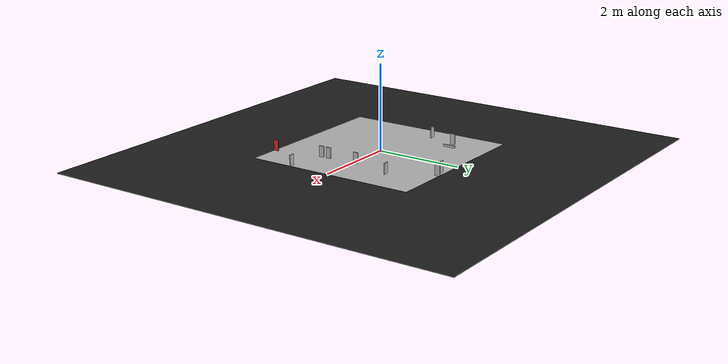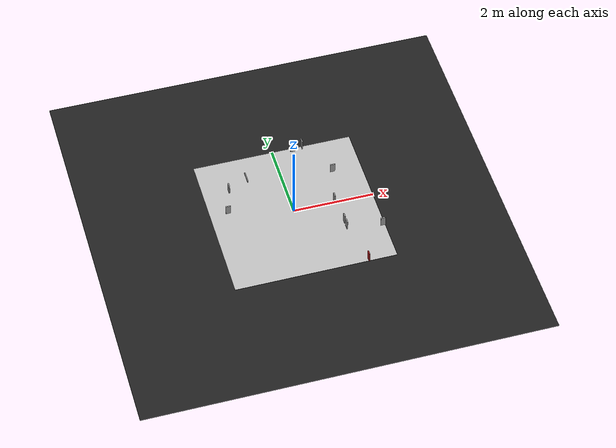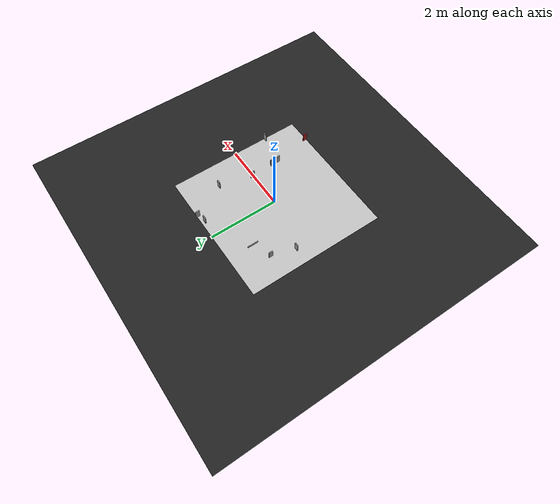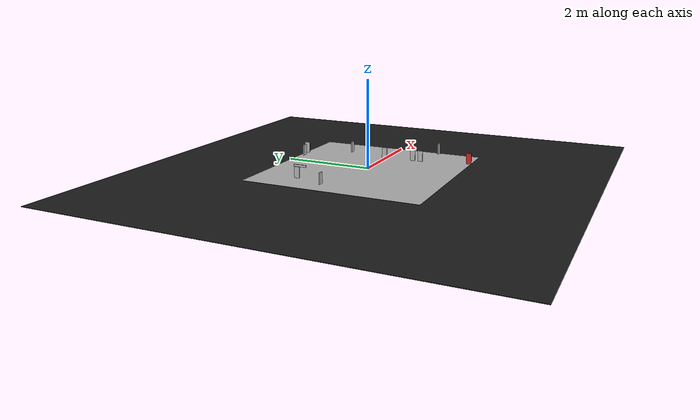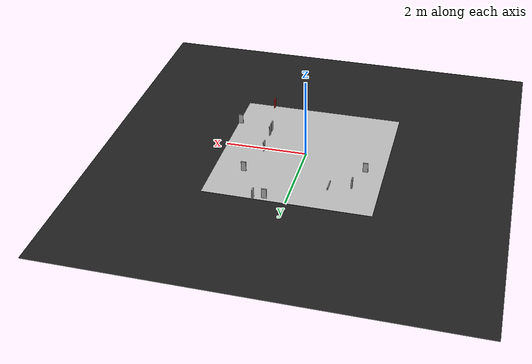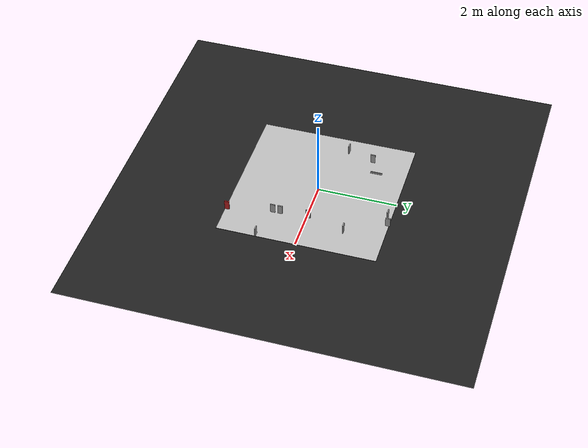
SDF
<sdf version="1.7">
 <world name="default">
  <scene>
   <ambient>0.8 0.8 0.8 1</ambient>
   <shadows>0</shadows>
   <grid>0</grid>
   <background>0.7 0.7 0.7 1</background>
  </scene>
  <model name="course">
   <static>1</static>
   <link name="course_link">
    <collision name="course_collision">
     <geometry><plane><normal>0 0 1</normal><size>4 4</size></plane></geometry>
     <surface><friction><ode><mu>100</mu><mu2>50</mu2></ode></friction></surface>
    </collision>
    <visual name="course_visual">
     <cast_shadows>0</cast_shadows>
     <geometry><plane><normal>0 0 1</normal><size>4 4</size></plane></geometry>
     <material>
      <script>
       <uri>model://turtlebot3_autorace_2020/course/materials/scripts</uri>
       <uri>model://turtlebot3_autorace_2020/course/materials/textures</uri>
       <name>course</name>
      </script>
     </material>
    </visual>
   </link>
   <pose>0 0 0 0 0 -3.14</pose>
  </model>
  <model name="traffic_bar">
   <static>0</static>
   <link name="traffic_bar">
    <collision name="collision"><geometry><box><size>0.3 0.02 0.05</size></box></geometry></collision>
    <visual name="visual">
     <geometry><box><size>0.3 0.02 0.05</size></box></geometry>
     <material>
      <script>
       <uri>model://turtlebot3_autorace_2020/traffic_bar/materials/scripts</uri>
       <uri>model://turtlebot3_autorace_2020/traffic_bar/materials/textures</uri>
       <name>traffic_bar</name>
      </script>
     </material>
    </visual>
    <inertial>
     <inertia><ixx>1</ixx><ixy>0</ixy><ixz>0</ixz><iyy>1</iyy><iyz>0</iyz><izz>1</izz></inertia>
     <mass>1</mass>
    </inertial>
   </link>
   <plugin name="traffic_bar_plugin" filename="libtraffic_bar_plugin.so"/>
   <pose>-0.85 1.26 0.125 0 0 -1.57</pose>
  </model>
  <model name="traffic_light">
   <link name="traffic_light">
    <collision name="collision"><geometry><box><size>0.12 0.025 0.25</size></box></geometry></collision>
    <visual name="visual">
     <geometry><box><size>0.12 0.025 0.25</size></box></geometry>
     <material>
      <script>
       <uri>model://turtlebot3_autorace_2020/traffic_light/materials/scripts</uri>
       <uri>model://turtlebot3_autorace_2020/traffic_light/materials/textures</uri>
       <name>traffic_light_red</name>
      </script>
     </material>
    </visual>
   </link>
   <plugin name="traffic_light_plugin" filename="libtraffic_light_plugin.so"/>
   <static>1</static>
   <pose>1.3 -1.95 0.13 0 0 -1.57</pose>
  </model>
  <model name="traffic_parking">
   <static>1</static>
   <link name="box">
    <collision name="collision"><geometry><box><size>0.12 0.025 0.25</size></box></geometry></collision>
    <visual name="visual">
     <geometry><box><size>0.12 0.025 0.25</size></box></geometry>
     <material>
      <script>
       <uri>model://turtlebot3_autorace_2020/traffic_parking/materials/scripts</uri>
       <uri>model://turtlebot3_autorace_2020/traffic_parking/materials/textures</uri>
       <name>traffic_parking</name>
      </script>
     </material>
    </visual>
   </link>
   <pose>0.761841 1.97226 0.13 0 0 -1.57</pose>
  </model>
  <model name="speed_limit_30">
   <pose>-1.54406 0.367428 0.125 3e-06 -1e-06 0.000149</pose>
   <link name="box">
    <collision name="collision"><geometry><box><size>0.12 0.025 0.25</size></box></geometry></collision>
    <visual name="visual">
     <geometry><box><size>0.12 0.025 0.25</size></box></geometry>
     <material>
      <script>
       <uri>model://turtlebot3_autorace_2020/speed_limit_30/materials/scripts</uri>
       <uri>model://turtlebot3_autorace_2020/speed_limit_30/materials/textures</uri>
       <name>speed_limit_30</name>
      </script>
     </material>
    </visual>
    <inertial>
     <inertia><ixx>1</ixx><ixy>0</ixy><ixz>0</ixz><iyy>1</iyy><iyz>0</iyz><izz>1</izz></inertia>
     <mass>1</mass>
    </inertial>
   </link>
  </model>
  <model name="traffic_stop">
   <static>1</static>
   <link name="box">
    <collision name="collision"><geometry><box><size>0.12 0.025 0.25</size></box></geometry></collision>
    <visual name="visual">
     <geometry><box><size>0.12 0.025 0.25</size></box></geometry>
     <material>
      <script>
       <uri>model://turtlebot3_autorace_2020/traffic_stop/materials/scripts</uri>
       <uri>model://turtlebot3_autorace_2020/traffic_stop/materials/textures</uri>
       <name>traffic_stop</name>
      </script>
     </material>
    </visual>
   </link>
   <pose>-1.35 1.04 0.125 0 0 -1.57</pose>
  </model>
  <model name="traffic_pl_left">
   <static>1</static>
   <link name="box">
    <collision name="collision"><geometry><box><size>0.12 0.025 0.25</size></box></geometry></collision>
    <visual name="visual">
     <geometry><box><size>0.12 0.025 0.25</size></box></geometry>
     <material>
      <script>
       <uri>model://turtlebot3_autorace_2020/traffic_pl_left/materials/scripts</uri>
       <uri>model://turtlebot3_autorace_2020/traffic_pl_left/materials/textures</uri>
       <name>traffic_pl_left</name>
      </script>
     </material>
    </visual>
   </link>
   <pose>0.509867 1.90704 0.13 0 -0 0</pose>
  </model>
  <model name="traffic_intersection">
   <static>1</static>
   <link name="box">
    <collision name="collision"><geometry><box><size>0.12 0.025 0.25</size></box></geometry></collision>
    <visual name="visual">
     <geometry><box><size>0.12 0.025 0.25</size></box></geometry>
     <material>
      <script>
       <uri>model://turtlebot3_autorace_2020/traffic_intersection/materials/scripts</uri>
       <uri>model://turtlebot3_autorace_2020/traffic_intersection/materials/textures</uri>
       <name>traffic_intersection</name>
      </script>
     </material>
    </visual>
   </link>
   <pose>1.95 -1 0.125 0 -0 0</pose>
  </model>
  <model name="traffic_right">
   <static>1</static>
   <link name="box">
    <collision name="collision"><geometry><box><size>0.12 0.025 0.25</size></box></geometry></collision>
    <visual name="visual">
     <geometry><box><size>0.12 0.025 0.25</size></box></geometry>
     <material>
      <script>
       <uri>model://turtlebot3_autorace_2020/traffic_right/materials/scripts</uri>
       <uri>model://turtlebot3_autorace_2020/traffic_right/materials/textures</uri>
       <name>traffic_right</name>
      </script>
     </material>
    </visual>
   </link>
   <pose>1.07995 -0.658204 0.125 0 0 -1.57</pose>
  </model>
  <light name="sun" type="directional">
   <pose>0 0 10 0 -0 0</pose>
   <diffuse>0.8 0.8 0.8 1</diffuse>
   <specular>0.1 0.1 0.1 1</specular>
   <attenuation>
    <range>1000</range>
    <constant>0.9</constant>
    <linear>0.01</linear>
    <quadratic>0.001</quadratic>
   </attenuation>
   <direction>-0.5 0.5 -1</direction>
   <spot><inner_angle>0</inner_angle><outer_angle>0</outer_angle><falloff>0</falloff></spot>
  </light>
  <model name="ground2">
   <pose>0 0 -0.1 0 -0 0</pose>
   <static>1</static>
   <link name="ground">
    <collision name="ground_coll"><geometry><box><size>8 8 0.01</size></box></geometry></collision>
    <visual name="ground_vis">
     <geometry><box><size>10 10 0.01</size></box></geometry>
     <material>
      <script><uri>file://media/materials/scripts/gazebo.material</uri><name>Gazebo/FlatBlack</name></script>
     </material>
    </visual>
   </link>
  </model>
  <gravity>0 0 -9.8</gravity>
  <magnetic_field>6e-06 2.3e-05 -4.2e-05</magnetic_field>
  <atmosphere type="adiabatic"/>
  <physics name="default_physics" default="0" type="ode">
   <max_step_size>0.001</max_step_size>
   <real_time_factor>1</real_time_factor>
   <real_time_update_rate>1000</real_time_update_rate>
  </physics>
  <spherical_coordinates>
   <surface_model>EARTH_WGS84</surface_model>
   <latitude_deg>0</latitude_deg>
   <longitude_deg>0</longitude_deg>
   <elevation>0</elevation>
   <heading_deg>0</heading_deg>
  </spherical_coordinates>
  <light name="user_point_light_1" type="point">
   <pose>-1.64815 0.604519 1 0 -0 0</pose>
   <diffuse>0.5 0.5 0.5 1</diffuse>
   <specular>0.1 0.1 0.1 1</specular>
   <attenuation>
    <range>20</range>
    <constant>0.5</constant>
    <linear>0.01</linear>
    <quadratic>0.001</quadratic>
   </attenuation>
   <cast_shadows>0</cast_shadows>
   <direction>0 0 -1</direction>
   <spot><inner_angle>0</inner_angle><outer_angle>0</outer_angle><falloff>0</falloff></spot>
  </light>
  <light name="user_point_light_2" type="point">
   <pose>1.63854 1.69565 1 0 -0 0</pose>
   <diffuse>0.5 0.5 0.5 1</diffuse>
   <specular>0.1 0.1 0.1 1</specular>
   <attenuation>
    <range>20</range>
    <constant>0.5</constant>
    <linear>0.01</linear>
    <quadratic>0.001</quadratic>
   </attenuation>
   <cast_shadows>0</cast_shadows>
   <direction>0 0 -1</direction>
   <spot><inner_angle>0</inner_angle><outer_angle>0</outer_angle><falloff>0</falloff></spot>
  </light>
  <light name="user_point_light_3" type="point">
   <pose>0.42 -3.31 1 0 -0 0</pose>
   <diffuse>0.5 0.5 0.5 1</diffuse>
   <specular>0.1 0.1 0.1 1</specular>
   <attenuation>
    <range>20</range>
    <constant>0.5</constant>
    <linear>0.01</linear>
    <quadratic>0.001</quadratic>
   </attenuation>
   <cast_shadows>0</cast_shadows>
   <direction>0 0 -1</direction>
   <spot><inner_angle>0</inner_angle><outer_angle>0</outer_angle><falloff>0</falloff></spot>
  </light>
  <audio><device>default</device></audio>
  <model name="traffic_left">
   <static>1</static>
   <link name="box">
    <collision name="collision"><geometry><box><size>0.12 0.025 0.25</size></box></geometry></collision>
    <visual name="visual">
     <geometry><box><size>0.12 0.025 0.25</size></box></geometry>
     <material>
      <script>
       <uri>model://turtlebot3_autorace_2020/traffic_left/materials/scripts</uri>
       <uri>model://turtlebot3_autorace_2020/traffic_left/materials/textures</uri>
       <name>traffic_left</name>
      </script>
     </material>
    </visual>
   </link>
   <pose>1.08361 -0.841969 0.125 0 0 -1.57</pose>
  </model>
  <model name="speed_bump">
   <static>1</static>
   <link name="box">
    <collision name="collision"><geometry><box><size>0.12 0.025 0.25</size></box></geometry></collision>
    <visual name="visual">
     <geometry><box><size>0.12 0.025 0.25</size></box></geometry>
     <material>
      <script>
       <uri>model://turtlebot3_autorace_2020/speed_bump/materials/scripts</uri>
       <uri>model://turtlebot3_autorace_2020/speed_bump/materials/textures</uri>
       <name>speed_bump</name>
      </script>
     </material>
    </visual>
   </link>
   <pose>1.03605 0.042726 0.125 0 0 -1.57</pose>
  </model>
  <model name="shool_zone">
   <static>1</static>
   <link name="box">
    <collision name="collision"><geometry><box><size>0.12 0.025 0.25</size></box></geometry></collision>
    <visual name="visual">
     <geometry><box><size>0.12 0.025 0.25</size></box></geometry>
     <material>
      <script>
       <uri>model://turtlebot3_autorace_2020/shool_zone/materials/scripts</uri>
       <uri>model://turtlebot3_autorace_2020/shool_zone/materials/textures</uri>
       <name>shool_zone</name>
      </script>
     </material>
    </visual>
   </link>
   <pose>1.26892 0.995612 0.13 0 -0 0</pose>
  </model>
 </world>
</sdf>
